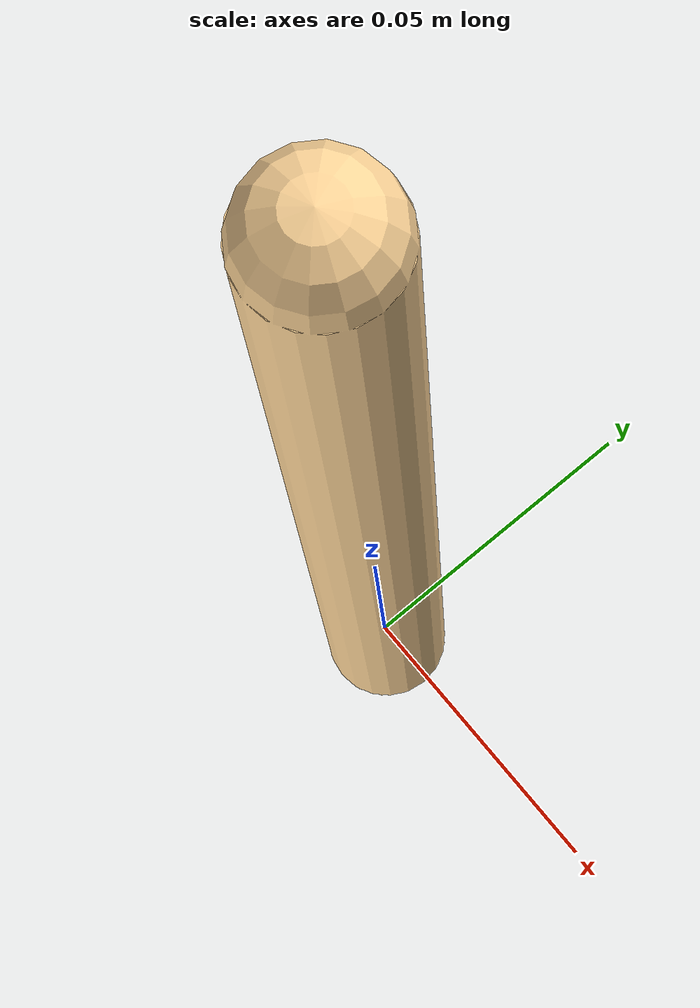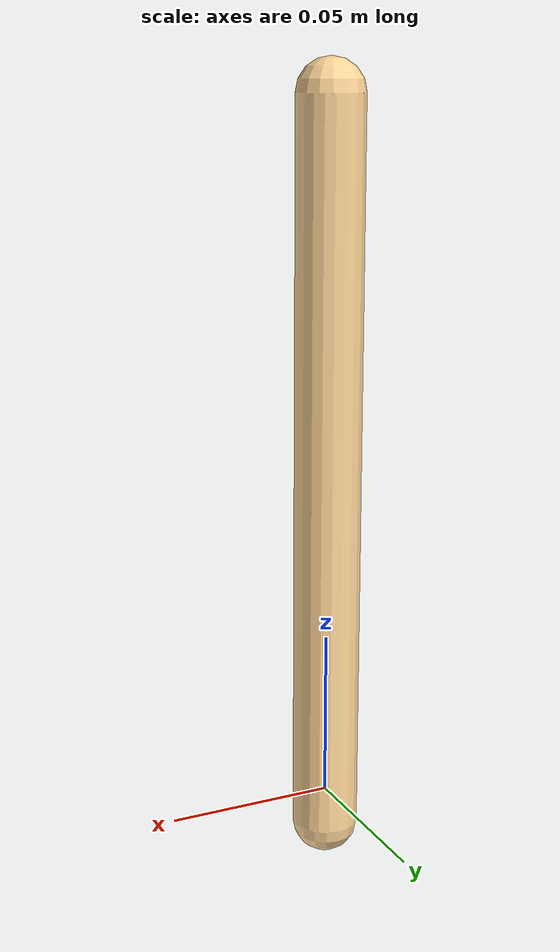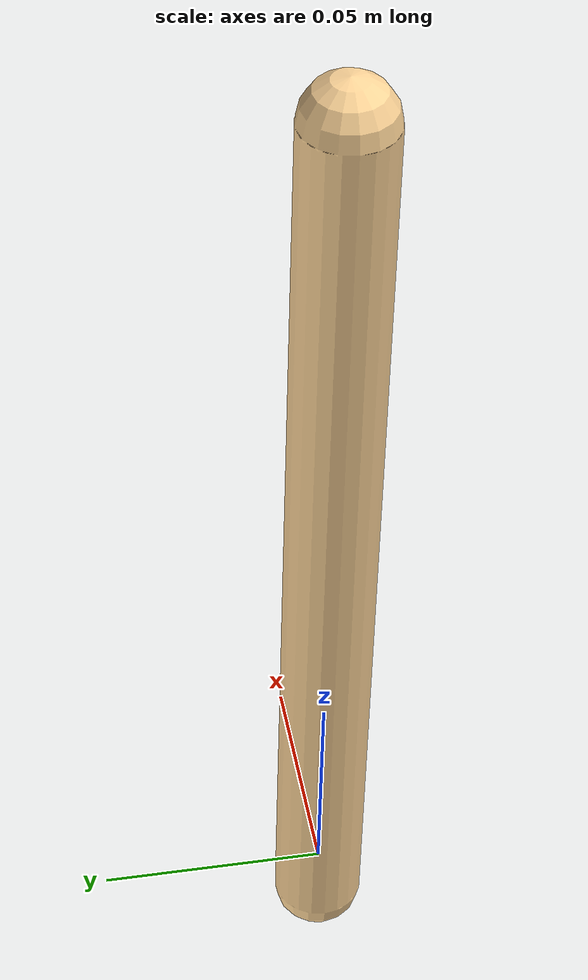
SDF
<?xml version="1.0"?>
<!-- This sdf file is based on schunk_wsg_50.sdf -->
<sdf version="1.7">
  <model name="drum_stick">
     <link name="stick">
     <collision name="stick">
        <pose>0 0 0.1 0 0 0</pose>
        <geometry>
            <capsule>
                <length>0.22</length>
                <radius>0.01</radius>
            </capsule>
        </geometry>
        <surface>
            <bounce>
                <restitution_coefficient>0.9</restitution_coefficient>
            </bounce>
            <contact>
                <elastic_modulus>1</elastic_modulus>
            </contact>
        </surface>
        <drake:proximity_properties>
          <drake:point_contact_stiffness>
            200000
          </drake:point_contact_stiffness>
          <drake:hunt_crossley_dissipation>
            2
          </drake:hunt_crossley_dissipation>
        </drake:proximity_properties>
    </collision>
    <visual name="stick">
        <pose>0 0 0.1 0 0 0</pose>
        <geometry>
            <capsule>
                <length>0.22</length>
                <radius>0.01</radius>
            </capsule>
        </geometry>
        <material>
            <diffuse>1 .84 0.6 1</diffuse>
        </material>
    </visual>
    <inertial>
        <pose>0 0 0 0 0 0</pose>
        <mass>0.5</mass>
        <inertia>
            <ixx> 0.001 </ixx>
            <iyy> 0.001 </iyy>
            <izz> 0.001</izz>
        </inertia>

    </inertial>
    </link>

  </model>
</sdf>
